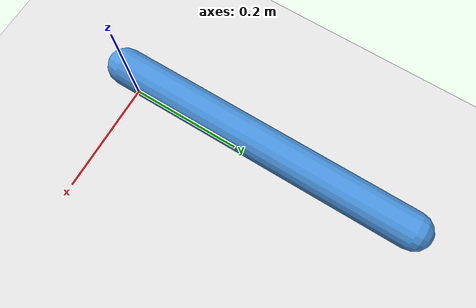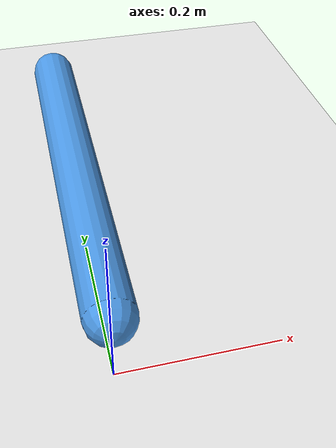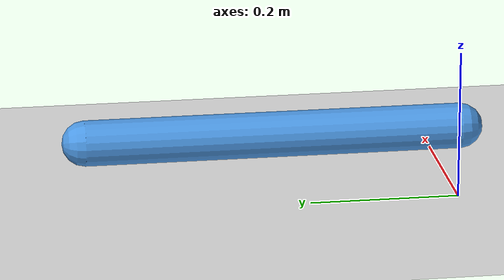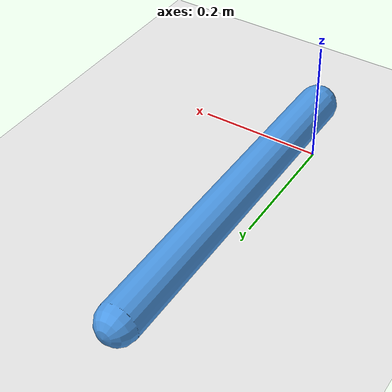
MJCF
<mujoco model="sensor_example">
  <option timestep="0.01" gravity="0 0 -9.81"/>

  <worldbody>
    <!-- Mặt đất -->
    <geom type="plane" size="2 2 0.1" rgba="0.9 0.9 0.9 1"/>

    <!-- Vật thể có khớp xoay -->
    <body name="arm_base" pos="0 0 0.1">
      <joint name="hinge_joint" type="hinge" axis="0 0 1" limited="false" range="-360 360"/>
      <geom type="capsule" fromto="0 0 0 0 0.5 0" size="0.03" rgba="0.3 0.6 0.9 1"/>
    </body>
  </worldbody>

  <actuator>
    <motor joint="hinge_joint" ctrlrange="-1 1" ctrllimited="true"/>
  </actuator>

  <sensor>
    <!-- Cảm biến đo vị trí, vận tốc và lực ở khớp -->
    <jointpos joint="hinge_joint"/>
    <jointvel joint="hinge_joint"/>
    <jointactuatorfrc joint="hinge_joint"/>

    <!-- Cảm biến IMU -->
    <accelerometer site="imu_site"/>
    <gyro site="imu_site"/>
  </sensor>

  <worldbody>
    <!-- Thêm một site để gắn cảm biến IMU, hình cầu nhỏ màu đỏ -->
    <site name="imu_site" pos="0 0.25 0.1" size="0.01" rgba="1 0 0 1"/>
  </worldbody>
</mujoco>
